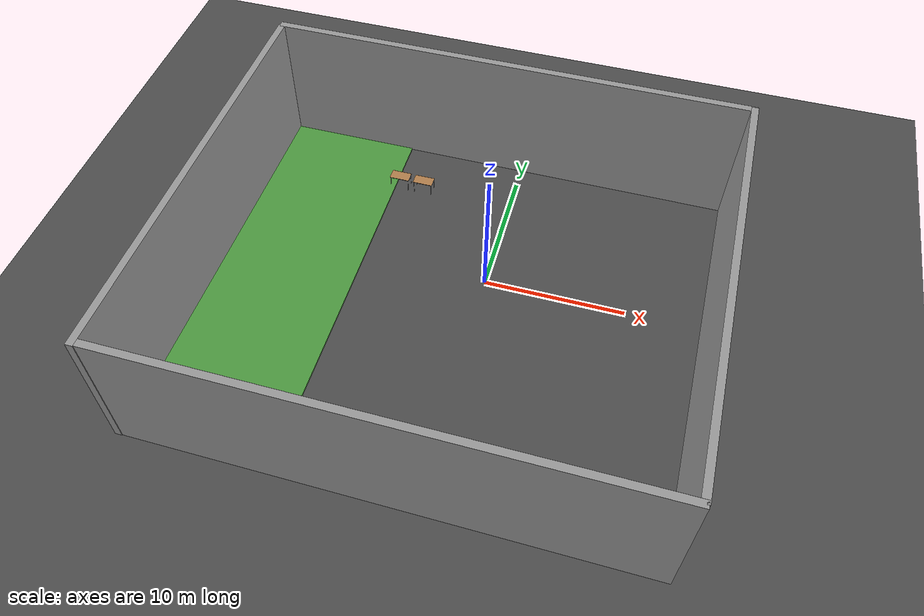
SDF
<sdf version="1.6">
 <world name="default">
  <light name="sun" type="directional">
   <pose>0 0 10 0 -0 0</pose>
   <diffuse>0.8 0.8 0.8 1</diffuse>
   <specular>0.2 0.2 0.2 1</specular>
   <attenuation>
    <range>1000</range>
    <constant>0.9</constant>
    <linear>0.01</linear>
    <quadratic>0.001</quadratic>
   </attenuation>
   <direction>-0.5 0.1 -0.9</direction>
  </light>
  <model name="ground_plane">
   <static>1</static>
   <link name="link">
    <collision name="collision">
     <geometry><plane><normal>0 0 1</normal><size>40000 40000</size></plane></geometry>
     <surface>
      <contact><collide_bitmask>65535</collide_bitmask></contact>
      <friction><ode><mu>100</mu><mu2>50</mu2></ode></friction>
     </surface>
    </collision>
    <visual name="visual">
     <cast_shadows>0</cast_shadows>
     <geometry><plane><normal>0 0 1</normal><size>50 50</size></plane></geometry>
     <material>
      <script><uri>file://media/materials/scripts/gazebo.material</uri><name>Gazebo/Road</name></script>
     </material>
    </visual>
   </link>
  </model>
  <gravity>0 0 -9.8</gravity>
  <magnetic_field>6e-06 2.3e-05 -4.2e-05</magnetic_field>
  <physics name="default_physics" default="0" type="ode">
   <max_step_size>0.001</max_step_size>
   <real_time_factor>1</real_time_factor>
   <real_time_update_rate>1000</real_time_update_rate>
  </physics>
  <scene><ambient>0.4 0.4 0.4 1</ambient><background>0.7 0.7 0.7 1</background><shadows>1</shadows></scene>
  <audio><device>default</device></audio>
  <spherical_coordinates>
   <surface_model>EARTH_WGS84</surface_model>
   <latitude_deg>0</latitude_deg>
   <longitude_deg>0</longitude_deg>
   <elevation>0</elevation>
   <heading_deg>0</heading_deg>
  </spherical_coordinates>
  <model name="grass_plane">
   <link name="link">
    <inertial>
     <mass>1</mass>
     <inertia><ixx>1</ixx><ixy>0</ixy><ixz>0</ixz><iyy>1</iyy><iyz>0</iyz><izz>1</izz></inertia>
    </inertial>
    <visual name="visual">
     <cast_shadows>0</cast_shadows>
     <geometry><box><size>10 30 0.2</size></box></geometry>
     <material>
      <script><uri>file://media/materials/scripts/gazebo.material</uri><name>Gazebo/Grass</name></script>
     </material>
    </visual>
    <collision name="collision">
     <geometry><box><size>10 30 0.2</size></box></geometry>
     <surface>
      <friction>
       <ode><mu>1</mu><mu2>1</mu2><fdir1>0 0 0</fdir1><slip1>0</slip1><slip2>0</slip2></ode>
       <torsional>
        <coefficient>1</coefficient>
        <patch_radius>0</patch_radius>
        <surface_radius>0</surface_radius>
        <use_patch_radius>1</use_patch_radius>
        <ode><slip>0</slip></ode>
       </torsional>
      </friction>
      <bounce><restitution_coefficient>0</restitution_coefficient><threshold>1e+06</threshold></bounce>
      <contact>
       <collide_without_contact>0</collide_without_contact>
       <collide_without_contact_bitmask>1</collide_without_contact_bitmask>
       <collide_bitmask>1</collide_bitmask>
       <ode>
        <soft_cfm>0</soft_cfm>
        <soft_erp>0.2</soft_erp>
        <kp>1e+13</kp>
        <kd>1</kd>
        <max_vel>0.01</max_vel>
        <min_depth>0</min_depth>
       </ode>
       <bullet>
        <split_impulse>1</split_impulse>
        <split_impulse_penetration_threshold>-0.01</split_impulse_penetration_threshold>
        <soft_cfm>0</soft_cfm>
        <soft_erp>0.2</soft_erp>
        <kp>1e+13</kp>
        <kd>1</kd>
       </bullet>
      </contact>
     </surface>
    </collision>
   </link>
   <static>1</static>
   <pose>-14.0993 -2.85316 0 0 -0 0</pose>
  </model>
  <model name="wall1">
   <link name="link">
    <enable_wind>1</enable_wind>
    <inertial>
     <mass>1</mass>
     <inertia><ixx>1</ixx><ixy>0</ixy><ixz>0</ixz><iyy>1</iyy><iyz>0</iyz><izz>1</izz></inertia>
    </inertial>
    <visual name="visual">
     <cast_shadows>0</cast_shadows>
     <geometry><box><size>35 0.5 10</size></box></geometry>
     <material>
      <script>
       <uri>model://grey_wall/materials/scripts</uri>
       <uri>model://grey_wall/materials/textures</uri>
       <name>vrc/grey_wall</name>
      </script>
      <shader type="pixel"><normal_map>__default__</normal_map></shader>
      <ambient>1 1 1 1</ambient>
      <diffuse>1 1 1 1</diffuse>
      <specular>0 0 0 1</specular>
      <emissive>0 0 0 1</emissive>
     </material>
    </visual>
    <collision name="collision">
     <geometry><box><size>35 0.5 10</size></box></geometry>
     <surface>
      <friction>
       <ode><mu>1</mu><mu2>1</mu2><fdir1>0 0 0</fdir1><slip1>0</slip1><slip2>0</slip2></ode>
       <torsional>
        <coefficient>1</coefficient>
        <patch_radius>0</patch_radius>
        <surface_radius>0</surface_radius>
        <use_patch_radius>1</use_patch_radius>
        <ode><slip>0</slip></ode>
       </torsional>
      </friction>
      <bounce><restitution_coefficient>0</restitution_coefficient><threshold>1e+06</threshold></bounce>
      <contact>
       <collide_without_contact>0</collide_without_contact>
       <collide_without_contact_bitmask>1</collide_without_contact_bitmask>
       <collide_bitmask>1</collide_bitmask>
       <ode>
        <soft_cfm>0</soft_cfm>
        <soft_erp>0.2</soft_erp>
        <kp>1e+13</kp>
        <kd>1</kd>
        <max_vel>0.01</max_vel>
        <min_depth>0</min_depth>
       </ode>
       <bullet>
        <split_impulse>1</split_impulse>
        <split_impulse_penetration_threshold>-0.01</split_impulse_penetration_threshold>
        <soft_cfm>0</soft_cfm>
        <soft_erp>0.2</soft_erp>
        <kp>1e+13</kp>
        <kd>1</kd>
       </bullet>
      </contact>
     </surface>
    </collision>
   </link>
   <static>1</static>
   <pose>-1.89732 -17.9183 5 0 -0 0</pose>
  </model>
  <model name="wall2">
   <link name="link">
    <enable_wind>1</enable_wind>
    <inertial>
     <mass>1</mass>
     <inertia><ixx>1</ixx><ixy>0</ixy><ixz>0</ixz><iyy>1</iyy><iyz>0</iyz><izz>1</izz></inertia>
    </inertial>
    <visual name="visual">
     <cast_shadows>0</cast_shadows>
     <geometry><box><size>30 0.5 10</size></box></geometry>
     <material>
      <script>
       <uri>model://grey_wall/materials/scripts</uri>
       <uri>model://grey_wall/materials/textures</uri>
       <name>vrc/grey_wall</name>
      </script>
      <shader type="pixel"><normal_map>__default__</normal_map></shader>
      <ambient>1 1 1 1</ambient>
      <diffuse>1 1 1 1</diffuse>
      <specular>0 0 0 1</specular>
      <emissive>0 0 0 1</emissive>
     </material>
    </visual>
    <collision name="collision">
     <geometry><box><size>30 0.5 10</size></box></geometry>
     <surface>
      <friction>
       <ode><mu>1</mu><mu2>1</mu2><fdir1>0 0 0</fdir1><slip1>0</slip1><slip2>0</slip2></ode>
       <torsional>
        <coefficient>1</coefficient>
        <patch_radius>0</patch_radius>
        <surface_radius>0</surface_radius>
        <use_patch_radius>1</use_patch_radius>
        <ode><slip>0</slip></ode>
       </torsional>
      </friction>
      <bounce><restitution_coefficient>0</restitution_coefficient><threshold>1e+06</threshold></bounce>
      <contact>
       <collide_without_contact>0</collide_without_contact>
       <collide_without_contact_bitmask>1</collide_without_contact_bitmask>
       <collide_bitmask>1</collide_bitmask>
       <ode>
        <soft_cfm>0</soft_cfm>
        <soft_erp>0.2</soft_erp>
        <kp>1e+13</kp>
        <kd>1</kd>
        <max_vel>0.01</max_vel>
        <min_depth>0</min_depth>
       </ode>
       <bullet>
        <split_impulse>1</split_impulse>
        <split_impulse_penetration_threshold>-0.01</split_impulse_penetration_threshold>
        <soft_cfm>0</soft_cfm>
        <soft_erp>0.2</soft_erp>
        <kp>1e+13</kp>
        <kd>1</kd>
       </bullet>
      </contact>
     </surface>
    </collision>
   </link>
   <static>1</static>
   <pose>15.5152 -2.93939 5 0 -0 1.56334</pose>
  </model>
  <model name="wall2_clone">
   <link name="link">
    <enable_wind>1</enable_wind>
    <inertial>
     <mass>1</mass>
     <inertia><ixx>1</ixx><ixy>0</ixy><ixz>0</ixz><iyy>1</iyy><iyz>0</iyz><izz>1</izz></inertia>
    </inertial>
    <visual name="visual">
     <cast_shadows>0</cast_shadows>
     <geometry><box><size>30 0.5 10</size></box></geometry>
     <material>
      <script>
       <uri>model://grey_wall/materials/scripts</uri>
       <uri>model://grey_wall/materials/textures</uri>
       <name>vrc/grey_wall</name>
      </script>
      <shader type="pixel"><normal_map>__default__</normal_map></shader>
      <ambient>1 1 1 1</ambient>
      <diffuse>1 1 1 1</diffuse>
      <specular>0 0 0 1</specular>
      <emissive>0 0 0 1</emissive>
     </material>
    </visual>
    <collision name="collision">
     <geometry><box><size>30 0.5 10</size></box></geometry>
     <surface>
      <friction>
       <ode><mu>1</mu><mu2>1</mu2><fdir1>0 0 0</fdir1><slip1>0</slip1><slip2>0</slip2></ode>
       <torsional>
        <coefficient>1</coefficient>
        <patch_radius>0</patch_radius>
        <surface_radius>0</surface_radius>
        <use_patch_radius>1</use_patch_radius>
        <ode><slip>0</slip></ode>
       </torsional>
      </friction>
      <bounce><restitution_coefficient>0</restitution_coefficient><threshold>1e+06</threshold></bounce>
      <contact>
       <collide_without_contact>0</collide_without_contact>
       <collide_without_contact_bitmask>1</collide_without_contact_bitmask>
       <collide_bitmask>1</collide_bitmask>
       <ode>
        <soft_cfm>0</soft_cfm>
        <soft_erp>0.2</soft_erp>
        <kp>1e+13</kp>
        <kd>1</kd>
        <max_vel>0.01</max_vel>
        <min_depth>0</min_depth>
       </ode>
       <bullet>
        <split_impulse>1</split_impulse>
        <split_impulse_penetration_threshold>-0.01</split_impulse_penetration_threshold>
        <soft_cfm>0</soft_cfm>
        <soft_erp>0.2</soft_erp>
        <kp>1e+13</kp>
        <kd>1</kd>
       </bullet>
      </contact>
     </surface>
    </collision>
   </link>
   <static>1</static>
   <pose>-19.1022 -3.20511 5 0 -0 1.56334</pose>
  </model>
  <model name="wall1_clone">
   <link name="link">
    <enable_wind>1</enable_wind>
    <inertial>
     <mass>1</mass>
     <inertia><ixx>1</ixx><ixy>0</ixy><ixz>0</ixz><iyy>1</iyy><iyz>0</iyz><izz>1</izz></inertia>
    </inertial>
    <visual name="visual">
     <cast_shadows>0</cast_shadows>
     <geometry><box><size>35 0.5 10</size></box></geometry>
     <material>
      <script>
       <uri>model://grey_wall/materials/scripts</uri>
       <uri>model://grey_wall/materials/textures</uri>
       <name>vrc/grey_wall</name>
      </script>
      <shader type="pixel"><normal_map>__default__</normal_map></shader>
      <ambient>1 1 1 1</ambient>
      <diffuse>1 1 1 1</diffuse>
      <specular>0 0 0 1</specular>
      <emissive>0 0 0 1</emissive>
     </material>
    </visual>
    <collision name="collision">
     <geometry><box><size>35 0.5 10</size></box></geometry>
     <surface>
      <friction>
       <ode><mu>1</mu><mu2>1</mu2><fdir1>0 0 0</fdir1><slip1>0</slip1><slip2>0</slip2></ode>
       <torsional>
        <coefficient>1</coefficient>
        <patch_radius>0</patch_radius>
        <surface_radius>0</surface_radius>
        <use_patch_radius>1</use_patch_radius>
        <ode><slip>0</slip></ode>
       </torsional>
      </friction>
      <bounce><restitution_coefficient>0</restitution_coefficient><threshold>1e+06</threshold></bounce>
      <contact>
       <collide_without_contact>0</collide_without_contact>
       <collide_without_contact_bitmask>1</collide_without_contact_bitmask>
       <collide_bitmask>1</collide_bitmask>
       <ode>
        <soft_cfm>0</soft_cfm>
        <soft_erp>0.2</soft_erp>
        <kp>1e+13</kp>
        <kd>1</kd>
        <max_vel>0.01</max_vel>
        <min_depth>0</min_depth>
       </ode>
       <bullet>
        <split_impulse>1</split_impulse>
        <split_impulse_penetration_threshold>-0.01</split_impulse_penetration_threshold>
        <soft_cfm>0</soft_cfm>
        <soft_erp>0.2</soft_erp>
        <kp>1e+13</kp>
        <kd>1</kd>
       </bullet>
      </contact>
     </surface>
    </collision>
   </link>
   <static>1</static>
   <pose>-1.64175 11.8744 5 0 -0 0</pose>
  </model>
  <atmosphere type="adiabatic"/>
  <model name="table">
   <static>1</static>
   <link name="link">
    <collision name="surface">
     <pose>0 0 1 0 -0 0</pose>
     <geometry><box><size>1.5 0.8 0.03</size></box></geometry>
     <surface><friction><ode><mu>0.6</mu><mu2>0.6</mu2></ode></friction></surface>
    </collision>
    <visual name="visual1">
     <pose>0 0 1 0 -0 0</pose>
     <geometry><box><size>1.5 0.8 0.03</size></box></geometry>
     <material>
      <script><uri>file://media/materials/scripts/gazebo.material</uri><name>Gazebo/Wood</name></script>
     </material>
    </visual>
    <collision name="front_left_leg">
     <pose>0.68 0.38 0.5 0 -0 0</pose>
     <geometry><cylinder><radius>0.02</radius><length>1</length></cylinder></geometry>
    </collision>
    <visual name="front_left_leg">
     <pose>0.68 0.38 0.5 0 -0 0</pose>
     <geometry><cylinder><radius>0.02</radius><length>1</length></cylinder></geometry>
     <material>
      <script><uri>file://media/materials/scripts/gazebo.material</uri><name>Gazebo/Grey</name></script>
     </material>
    </visual>
    <collision name="front_right_leg">
     <pose>0.68 -0.38 0.5 0 -0 0</pose>
     <geometry><cylinder><radius>0.02</radius><length>1</length></cylinder></geometry>
    </collision>
    <visual name="front_right_leg">
     <pose>0.68 -0.38 0.5 0 -0 0</pose>
     <geometry><cylinder><radius>0.02</radius><length>1</length></cylinder></geometry>
     <material>
      <script><uri>file://media/materials/scripts/gazebo.material</uri><name>Gazebo/Grey</name></script>
     </material>
    </visual>
    <collision name="back_right_leg">
     <pose>-0.68 -0.38 0.5 0 -0 0</pose>
     <geometry><cylinder><radius>0.02</radius><length>1</length></cylinder></geometry>
    </collision>
    <visual name="back_right_leg">
     <pose>-0.68 -0.38 0.5 0 -0 0</pose>
     <geometry><cylinder><radius>0.02</radius><length>1</length></cylinder></geometry>
     <material>
      <script><uri>file://media/materials/scripts/gazebo.material</uri><name>Gazebo/Grey</name></script>
     </material>
    </visual>
    <collision name="back_left_leg">
     <pose>-0.68 0.38 0.5 0 -0 0</pose>
     <geometry><cylinder><radius>0.02</radius><length>1</length></cylinder></geometry>
    </collision>
    <visual name="back_left_leg">
     <pose>-0.68 0.38 0.5 0 -0 0</pose>
     <geometry><cylinder><radius>0.02</radius><length>1</length></cylinder></geometry>
     <material>
      <script><uri>file://media/materials/scripts/gazebo.material</uri><name>Gazebo/Grey</name></script>
     </material>
    </visual>
   </link>
   <pose>-6.87951 7.56953 0 0 -0 0</pose>
  </model>
  <model name="table_0">
   <static>1</static>
   <link name="link">
    <collision name="surface">
     <pose>0 0 1 0 -0 0</pose>
     <geometry><box><size>1.5 0.8 0.03</size></box></geometry>
     <surface><friction><ode><mu>0.6</mu><mu2>0.6</mu2></ode></friction></surface>
    </collision>
    <visual name="visual1">
     <pose>0 0 1 0 -0 0</pose>
     <geometry><box><size>1.5 0.8 0.03</size></box></geometry>
     <material>
      <script><uri>file://media/materials/scripts/gazebo.material</uri><name>Gazebo/Wood</name></script>
     </material>
    </visual>
    <collision name="front_left_leg">
     <pose>0.68 0.38 0.5 0 -0 0</pose>
     <geometry><cylinder><radius>0.02</radius><length>1</length></cylinder></geometry>
    </collision>
    <visual name="front_left_leg">
     <pose>0.68 0.38 0.5 0 -0 0</pose>
     <geometry><cylinder><radius>0.02</radius><length>1</length></cylinder></geometry>
     <material>
      <script><uri>file://media/materials/scripts/gazebo.material</uri><name>Gazebo/Grey</name></script>
     </material>
    </visual>
    <collision name="front_right_leg">
     <pose>0.68 -0.38 0.5 0 -0 0</pose>
     <geometry><cylinder><radius>0.02</radius><length>1</length></cylinder></geometry>
    </collision>
    <visual name="front_right_leg">
     <pose>0.68 -0.38 0.5 0 -0 0</pose>
     <geometry><cylinder><radius>0.02</radius><length>1</length></cylinder></geometry>
     <material>
      <script><uri>file://media/materials/scripts/gazebo.material</uri><name>Gazebo/Grey</name></script>
     </material>
    </visual>
    <collision name="back_right_leg">
     <pose>-0.68 -0.38 0.5 0 -0 0</pose>
     <geometry><cylinder><radius>0.02</radius><length>1</length></cylinder></geometry>
    </collision>
    <visual name="back_right_leg">
     <pose>-0.68 -0.38 0.5 0 -0 0</pose>
     <geometry><cylinder><radius>0.02</radius><length>1</length></cylinder></geometry>
     <material>
      <script><uri>file://media/materials/scripts/gazebo.material</uri><name>Gazebo/Grey</name></script>
     </material>
    </visual>
    <collision name="back_left_leg">
     <pose>-0.68 0.38 0.5 0 -0 0</pose>
     <geometry><cylinder><radius>0.02</radius><length>1</length></cylinder></geometry>
    </collision>
    <visual name="back_left_leg">
     <pose>-0.68 0.38 0.5 0 -0 0</pose>
     <geometry><cylinder><radius>0.02</radius><length>1</length></cylinder></geometry>
     <material>
      <script><uri>file://media/materials/scripts/gazebo.material</uri><name>Gazebo/Grey</name></script>
     </material>
    </visual>
   </link>
   <pose>-8.73996 7.5834 0 0 -0 0</pose>
  </model>
 </world>
</sdf>
